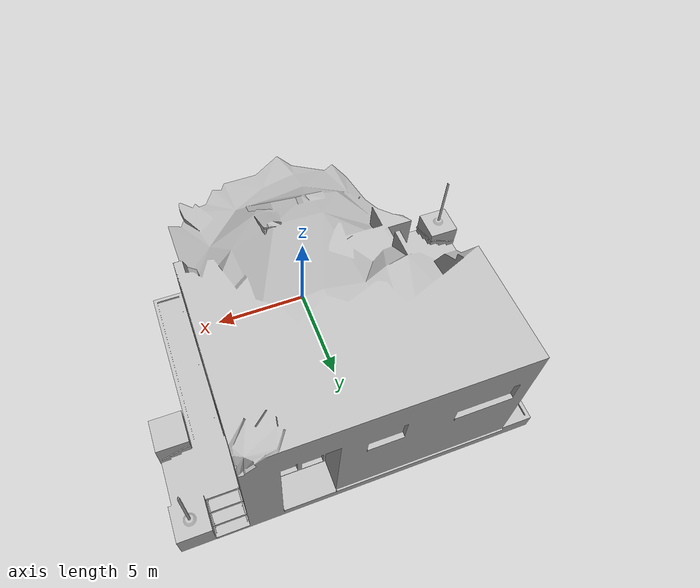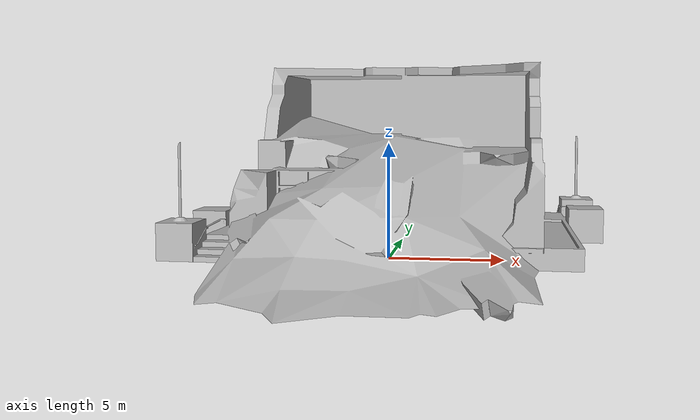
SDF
<?xml version="1.0" ?>
<sdf version="1.6">
  <model name="collapsed_police_station">
    <static>true</static>
    <link name="link">
      <collision name="collision">
        <geometry>
          <mesh>
            <uri>model://collapsed_police_station/meshes/collapsed_police_station.dae</uri>
          </mesh>
        </geometry>
      </collision>
      <visual name="visual">
        <geometry>
          <mesh>
            <uri>model://collapsed_police_station/meshes/collapsed_police_station.dae</uri>
          </mesh>
        </geometry>
      </visual>
    </link>
  </model>
</sdf>
